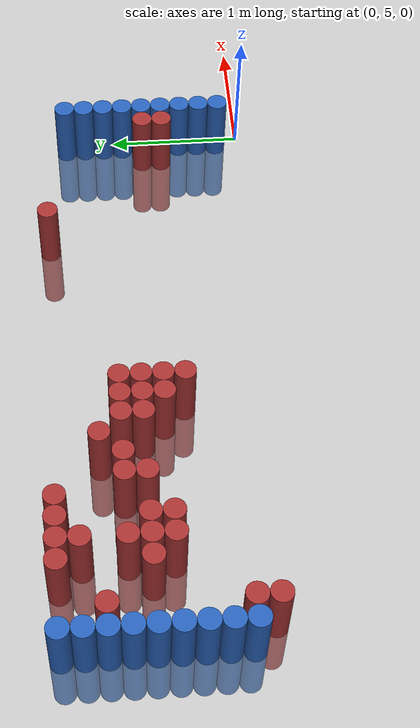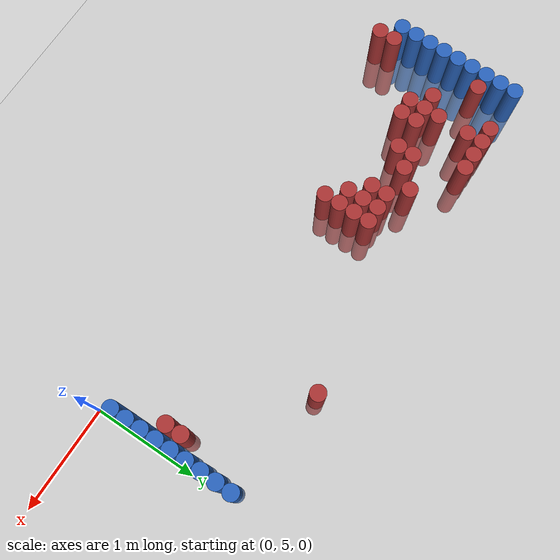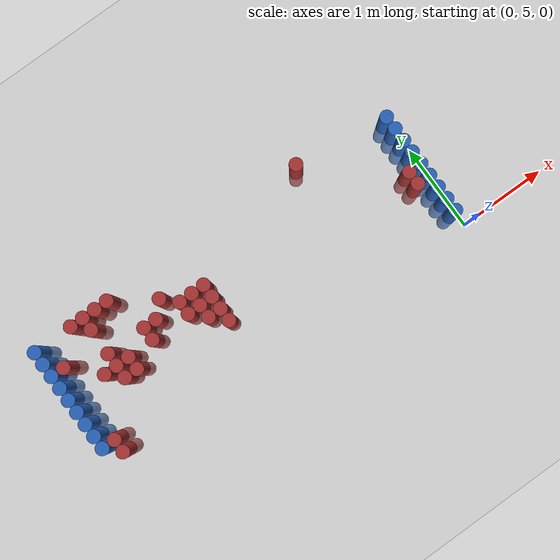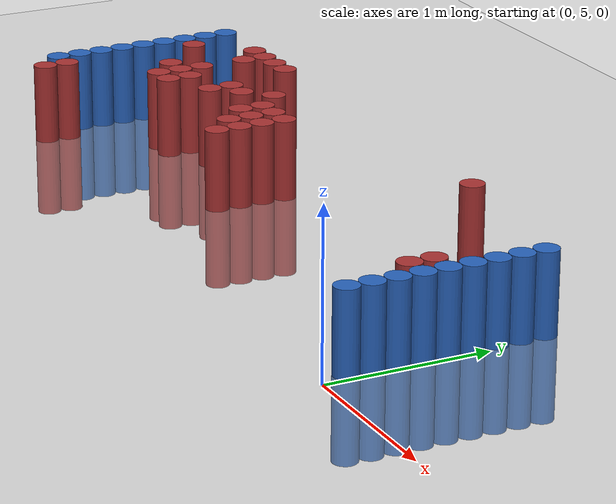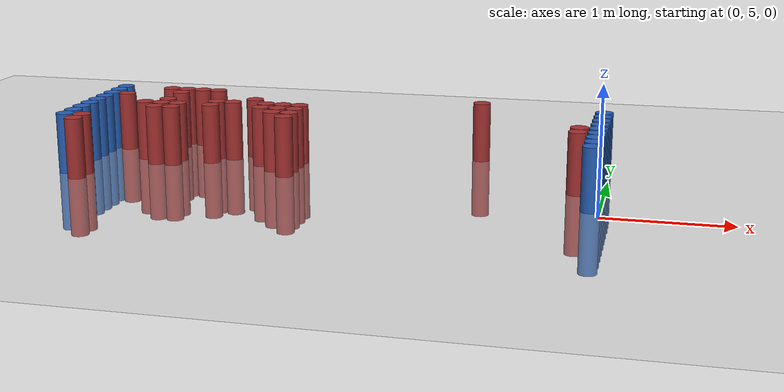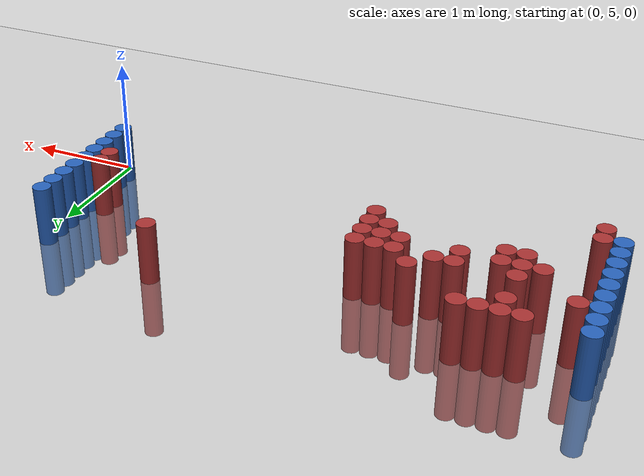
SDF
<sdf version="1.6">
 <world name="default">
  <model name="ground_plane">
   <static>1</static>
   <link name="link">
    <collision name="collision">
     <geometry><plane><normal>0 0 1</normal><size>100 100</size></plane></geometry>
     <surface><friction><ode><mu>100</mu><mu2>50</mu2></ode></friction></surface>
    </collision>
    <visual name="visual">
     <cast_shadows>0</cast_shadows>
     <geometry><plane><normal>0 0 1</normal><size>100 100</size></plane></geometry>
     <material>
      <script><uri>file://media/materials/scripts/gazebo.material</uri><name>Gazebo/Grey</name></script>
     </material>
    </visual>
   </link>
  </model>
  <model name="unit_cylinder_97">
   <static>1</static>
   <pose>-4.425000 5.325000 0.000000 0.000000 0.000000 0.000000</pose>
   <link name="link">
    <inertial>
     <mass>1</mass>
     <inertia><ixx>0.145833</ixx><ixy>0</ixy><ixz>0</ixz><iyy>0.145833</iyy><iyz>0</iyz><izz>0.125</izz></inertia>
    </inertial>
    <collision name="collision">
     <geometry><cylinder><radius>0.075000</radius><length>1</length></cylinder></geometry>
    </collision>
    <visual name="visual">
     <geometry><cylinder><radius>0.075000</radius><length>1</length></cylinder></geometry>
     <material>
      <ambient>0.152000 0.379000 0.720000 1</ambient>
      <diffuse>0.152000 0.379000 0.720000 1</diffuse>
     </material>
     <material>
      <script><name>Gazebo/Grey</name><uri>file://media/materials/scripts/gazebo.material</uri></script>
     </material>
    </visual>
   </link>
  </model>
  <model name="unit_cylinder_98">
   <static>1</static>
   <pose>-4.425000 5.475000 0.000000 0.000000 0.000000 0.000000</pose>
   <link name="link">
    <inertial>
     <mass>1</mass>
     <inertia><ixx>0.145833</ixx><ixy>0</ixy><ixz>0</ixz><iyy>0.145833</iyy><iyz>0</iyz><izz>0.125</izz></inertia>
    </inertial>
    <collision name="collision">
     <geometry><cylinder><radius>0.075000</radius><length>1</length></cylinder></geometry>
    </collision>
    <visual name="visual">
     <geometry><cylinder><radius>0.075000</radius><length>1</length></cylinder></geometry>
     <material>
      <ambient>0.152000 0.379000 0.720000 1</ambient>
      <diffuse>0.152000 0.379000 0.720000 1</diffuse>
     </material>
     <material>
      <script><name>Gazebo/Grey</name><uri>file://media/materials/scripts/gazebo.material</uri></script>
     </material>
    </visual>
   </link>
  </model>
  <model name="unit_cylinder_99">
   <static>1</static>
   <pose>-4.425000 5.625000 0.000000 0.000000 0.000000 0.000000</pose>
   <link name="link">
    <inertial>
     <mass>1</mass>
     <inertia><ixx>0.145833</ixx><ixy>0</ixy><ixz>0</ixz><iyy>0.145833</iyy><iyz>0</iyz><izz>0.125</izz></inertia>
    </inertial>
    <collision name="collision">
     <geometry><cylinder><radius>0.075000</radius><length>1</length></cylinder></geometry>
    </collision>
    <visual name="visual">
     <geometry><cylinder><radius>0.075000</radius><length>1</length></cylinder></geometry>
     <material>
      <ambient>0.152000 0.379000 0.720000 1</ambient>
      <diffuse>0.152000 0.379000 0.720000 1</diffuse>
     </material>
     <material>
      <script><name>Gazebo/Grey</name><uri>file://media/materials/scripts/gazebo.material</uri></script>
     </material>
    </visual>
   </link>
  </model>
  <model name="unit_cylinder_100">
   <static>1</static>
   <pose>-4.425000 5.775000 0.000000 0.000000 0.000000 0.000000</pose>
   <link name="link">
    <inertial>
     <mass>1</mass>
     <inertia><ixx>0.145833</ixx><ixy>0</ixy><ixz>0</ixz><iyy>0.145833</iyy><iyz>0</iyz><izz>0.125</izz></inertia>
    </inertial>
    <collision name="collision">
     <geometry><cylinder><radius>0.075000</radius><length>1</length></cylinder></geometry>
    </collision>
    <visual name="visual">
     <geometry><cylinder><radius>0.075000</radius><length>1</length></cylinder></geometry>
     <material>
      <ambient>0.152000 0.379000 0.720000 1</ambient>
      <diffuse>0.152000 0.379000 0.720000 1</diffuse>
     </material>
     <material>
      <script><name>Gazebo/Grey</name><uri>file://media/materials/scripts/gazebo.material</uri></script>
     </material>
    </visual>
   </link>
  </model>
  <model name="unit_cylinder_101">
   <static>1</static>
   <pose>-4.425000 5.925000 0.000000 0.000000 0.000000 0.000000</pose>
   <link name="link">
    <inertial>
     <mass>1</mass>
     <inertia><ixx>0.145833</ixx><ixy>0</ixy><ixz>0</ixz><iyy>0.145833</iyy><iyz>0</iyz><izz>0.125</izz></inertia>
    </inertial>
    <collision name="collision">
     <geometry><cylinder><radius>0.075000</radius><length>1</length></cylinder></geometry>
    </collision>
    <visual name="visual">
     <geometry><cylinder><radius>0.075000</radius><length>1</length></cylinder></geometry>
     <material>
      <ambient>0.152000 0.379000 0.720000 1</ambient>
      <diffuse>0.152000 0.379000 0.720000 1</diffuse>
     </material>
     <material>
      <script><name>Gazebo/Grey</name><uri>file://media/materials/scripts/gazebo.material</uri></script>
     </material>
    </visual>
   </link>
  </model>
  <model name="unit_cylinder_102">
   <static>1</static>
   <pose>-4.425000 6.075000 0.000000 0.000000 0.000000 0.000000</pose>
   <link name="link">
    <inertial>
     <mass>1</mass>
     <inertia><ixx>0.145833</ixx><ixy>0</ixy><ixz>0</ixz><iyy>0.145833</iyy><iyz>0</iyz><izz>0.125</izz></inertia>
    </inertial>
    <collision name="collision">
     <geometry><cylinder><radius>0.075000</radius><length>1</length></cylinder></geometry>
    </collision>
    <visual name="visual">
     <geometry><cylinder><radius>0.075000</radius><length>1</length></cylinder></geometry>
     <material>
      <ambient>0.152000 0.379000 0.720000 1</ambient>
      <diffuse>0.152000 0.379000 0.720000 1</diffuse>
     </material>
     <material>
      <script><name>Gazebo/Grey</name><uri>file://media/materials/scripts/gazebo.material</uri></script>
     </material>
    </visual>
   </link>
  </model>
  <model name="unit_cylinder_103">
   <static>1</static>
   <pose>-4.425000 6.225000 0.000000 0.000000 0.000000 0.000000</pose>
   <link name="link">
    <inertial>
     <mass>1</mass>
     <inertia><ixx>0.145833</ixx><ixy>0</ixy><ixz>0</ixz><iyy>0.145833</iyy><iyz>0</iyz><izz>0.125</izz></inertia>
    </inertial>
    <collision name="collision">
     <geometry><cylinder><radius>0.075000</radius><length>1</length></cylinder></geometry>
    </collision>
    <visual name="visual">
     <geometry><cylinder><radius>0.075000</radius><length>1</length></cylinder></geometry>
     <material>
      <ambient>0.152000 0.379000 0.720000 1</ambient>
      <diffuse>0.152000 0.379000 0.720000 1</diffuse>
     </material>
     <material>
      <script><name>Gazebo/Grey</name><uri>file://media/materials/scripts/gazebo.material</uri></script>
     </material>
    </visual>
   </link>
  </model>
  <model name="unit_cylinder_104">
   <static>1</static>
   <pose>-4.425000 6.375000 0.000000 0.000000 0.000000 0.000000</pose>
   <link name="link">
    <inertial>
     <mass>1</mass>
     <inertia><ixx>0.145833</ixx><ixy>0</ixy><ixz>0</ixz><iyy>0.145833</iyy><iyz>0</iyz><izz>0.125</izz></inertia>
    </inertial>
    <collision name="collision">
     <geometry><cylinder><radius>0.075000</radius><length>1</length></cylinder></geometry>
    </collision>
    <visual name="visual">
     <geometry><cylinder><radius>0.075000</radius><length>1</length></cylinder></geometry>
     <material>
      <ambient>0.152000 0.379000 0.720000 1</ambient>
      <diffuse>0.152000 0.379000 0.720000 1</diffuse>
     </material>
     <material>
      <script><name>Gazebo/Grey</name><uri>file://media/materials/scripts/gazebo.material</uri></script>
     </material>
    </visual>
   </link>
  </model>
  <model name="unit_cylinder_105">
   <static>1</static>
   <pose>-4.425000 6.525000 0.000000 0.000000 0.000000 0.000000</pose>
   <link name="link">
    <inertial>
     <mass>1</mass>
     <inertia><ixx>0.145833</ixx><ixy>0</ixy><ixz>0</ixz><iyy>0.145833</iyy><iyz>0</iyz><izz>0.125</izz></inertia>
    </inertial>
    <collision name="collision">
     <geometry><cylinder><radius>0.075000</radius><length>1</length></cylinder></geometry>
    </collision>
    <visual name="visual">
     <geometry><cylinder><radius>0.075000</radius><length>1</length></cylinder></geometry>
     <material>
      <ambient>0.152000 0.379000 0.720000 1</ambient>
      <diffuse>0.152000 0.379000 0.720000 1</diffuse>
     </material>
     <material>
      <script><name>Gazebo/Grey</name><uri>file://media/materials/scripts/gazebo.material</uri></script>
     </material>
    </visual>
   </link>
  </model>
  <model name="unit_cylinder_126">
   <static>1</static>
   <pose>-4.275000 5.175000 0.000000 0.000000 0.000000 0.000000</pose>
   <link name="link">
    <inertial>
     <mass>1</mass>
     <inertia><ixx>0.145833</ixx><ixy>0</ixy><ixz>0</ixz><iyy>0.145833</iyy><iyz>0</iyz><izz>0.125</izz></inertia>
    </inertial>
    <collision name="collision">
     <geometry><cylinder><radius>0.075000</radius><length>1</length></cylinder></geometry>
    </collision>
    <visual name="visual">
     <geometry><cylinder><radius>0.075000</radius><length>1</length></cylinder></geometry>
     <material>
      <ambient>0.648000 0.192000 0.192000 1</ambient>
      <diffuse>0.648000 0.192000 0.192000 1</diffuse>
     </material>
     <material>
      <script><name>Gazebo/Grey</name><uri>file://media/materials/scripts/gazebo.material</uri></script>
     </material>
    </visual>
   </link>
  </model>
  <model name="unit_cylinder_127">
   <static>1</static>
   <pose>-4.275000 5.325000 0.000000 0.000000 0.000000 0.000000</pose>
   <link name="link">
    <inertial>
     <mass>1</mass>
     <inertia><ixx>0.145833</ixx><ixy>0</ixy><ixz>0</ixz><iyy>0.145833</iyy><iyz>0</iyz><izz>0.125</izz></inertia>
    </inertial>
    <collision name="collision">
     <geometry><cylinder><radius>0.075000</radius><length>1</length></cylinder></geometry>
    </collision>
    <visual name="visual">
     <geometry><cylinder><radius>0.075000</radius><length>1</length></cylinder></geometry>
     <material>
      <ambient>0.648000 0.192000 0.192000 1</ambient>
      <diffuse>0.648000 0.192000 0.192000 1</diffuse>
     </material>
     <material>
      <script><name>Gazebo/Grey</name><uri>file://media/materials/scripts/gazebo.material</uri></script>
     </material>
    </visual>
   </link>
  </model>
  <model name="unit_cylinder_128">
   <static>1</static>
   <pose>-4.275000 6.225000 0.000000 0.000000 0.000000 0.000000</pose>
   <link name="link">
    <inertial>
     <mass>1</mass>
     <inertia><ixx>0.145833</ixx><ixy>0</ixy><ixz>0</ixz><iyy>0.145833</iyy><iyz>0</iyz><izz>0.125</izz></inertia>
    </inertial>
    <collision name="collision">
     <geometry><cylinder><radius>0.075000</radius><length>1</length></cylinder></geometry>
    </collision>
    <visual name="visual">
     <geometry><cylinder><radius>0.075000</radius><length>1</length></cylinder></geometry>
     <material>
      <ambient>0.648000 0.192000 0.192000 1</ambient>
      <diffuse>0.648000 0.192000 0.192000 1</diffuse>
     </material>
     <material>
      <script><name>Gazebo/Grey</name><uri>file://media/materials/scripts/gazebo.material</uri></script>
     </material>
    </visual>
   </link>
  </model>
  <model name="unit_cylinder_134">
   <static>1</static>
   <pose>-3.975000 5.925000 0.000000 0.000000 0.000000 0.000000</pose>
   <link name="link">
    <inertial>
     <mass>1</mass>
     <inertia><ixx>0.145833</ixx><ixy>0</ixy><ixz>0</ixz><iyy>0.145833</iyy><iyz>0</iyz><izz>0.125</izz></inertia>
    </inertial>
    <collision name="collision">
     <geometry><cylinder><radius>0.075000</radius><length>1</length></cylinder></geometry>
    </collision>
    <visual name="visual">
     <geometry><cylinder><radius>0.075000</radius><length>1</length></cylinder></geometry>
     <material>
      <ambient>0.648000 0.192000 0.192000 1</ambient>
      <diffuse>0.648000 0.192000 0.192000 1</diffuse>
     </material>
     <material>
      <script><name>Gazebo/Grey</name><uri>file://media/materials/scripts/gazebo.material</uri></script>
     </material>
    </visual>
   </link>
  </model>
  <model name="unit_cylinder_135">
   <static>1</static>
   <pose>-3.975000 6.525000 0.000000 0.000000 0.000000 0.000000</pose>
   <link name="link">
    <inertial>
     <mass>1</mass>
     <inertia><ixx>0.145833</ixx><ixy>0</ixy><ixz>0</ixz><iyy>0.145833</iyy><iyz>0</iyz><izz>0.125</izz></inertia>
    </inertial>
    <collision name="collision">
     <geometry><cylinder><radius>0.075000</radius><length>1</length></cylinder></geometry>
    </collision>
    <visual name="visual">
     <geometry><cylinder><radius>0.075000</radius><length>1</length></cylinder></geometry>
     <material>
      <ambient>0.648000 0.192000 0.192000 1</ambient>
      <diffuse>0.648000 0.192000 0.192000 1</diffuse>
     </material>
     <material>
      <script><name>Gazebo/Grey</name><uri>file://media/materials/scripts/gazebo.material</uri></script>
     </material>
    </visual>
   </link>
  </model>
  <model name="unit_cylinder_136">
   <static>1</static>
   <pose>-3.825000 5.775000 0.000000 0.000000 0.000000 0.000000</pose>
   <link name="link">
    <inertial>
     <mass>1</mass>
     <inertia><ixx>0.145833</ixx><ixy>0</ixy><ixz>0</ixz><iyy>0.145833</iyy><iyz>0</iyz><izz>0.125</izz></inertia>
    </inertial>
    <collision name="collision">
     <geometry><cylinder><radius>0.075000</radius><length>1</length></cylinder></geometry>
    </collision>
    <visual name="visual">
     <geometry><cylinder><radius>0.075000</radius><length>1</length></cylinder></geometry>
     <material>
      <ambient>0.648000 0.192000 0.192000 1</ambient>
      <diffuse>0.648000 0.192000 0.192000 1</diffuse>
     </material>
     <material>
      <script><name>Gazebo/Grey</name><uri>file://media/materials/scripts/gazebo.material</uri></script>
     </material>
    </visual>
   </link>
  </model>
  <model name="unit_cylinder_137">
   <static>1</static>
   <pose>-3.825000 5.925000 0.000000 0.000000 0.000000 0.000000</pose>
   <link name="link">
    <inertial>
     <mass>1</mass>
     <inertia><ixx>0.145833</ixx><ixy>0</ixy><ixz>0</ixz><iyy>0.145833</iyy><iyz>0</iyz><izz>0.125</izz></inertia>
    </inertial>
    <collision name="collision">
     <geometry><cylinder><radius>0.075000</radius><length>1</length></cylinder></geometry>
    </collision>
    <visual name="visual">
     <geometry><cylinder><radius>0.075000</radius><length>1</length></cylinder></geometry>
     <material>
      <ambient>0.648000 0.192000 0.192000 1</ambient>
      <diffuse>0.648000 0.192000 0.192000 1</diffuse>
     </material>
     <material>
      <script><name>Gazebo/Grey</name><uri>file://media/materials/scripts/gazebo.material</uri></script>
     </material>
    </visual>
   </link>
  </model>
  <model name="unit_cylinder_138">
   <static>1</static>
   <pose>-3.825000 6.075000 0.000000 0.000000 0.000000 0.000000</pose>
   <link name="link">
    <inertial>
     <mass>1</mass>
     <inertia><ixx>0.145833</ixx><ixy>0</ixy><ixz>0</ixz><iyy>0.145833</iyy><iyz>0</iyz><izz>0.125</izz></inertia>
    </inertial>
    <collision name="collision">
     <geometry><cylinder><radius>0.075000</radius><length>1</length></cylinder></geometry>
    </collision>
    <visual name="visual">
     <geometry><cylinder><radius>0.075000</radius><length>1</length></cylinder></geometry>
     <material>
      <ambient>0.648000 0.192000 0.192000 1</ambient>
      <diffuse>0.648000 0.192000 0.192000 1</diffuse>
     </material>
     <material>
      <script><name>Gazebo/Grey</name><uri>file://media/materials/scripts/gazebo.material</uri></script>
     </material>
    </visual>
   </link>
  </model>
  <model name="unit_cylinder_139">
   <static>1</static>
   <pose>-3.825000 6.375000 0.000000 0.000000 0.000000 0.000000</pose>
   <link name="link">
    <inertial>
     <mass>1</mass>
     <inertia><ixx>0.145833</ixx><ixy>0</ixy><ixz>0</ixz><iyy>0.145833</iyy><iyz>0</iyz><izz>0.125</izz></inertia>
    </inertial>
    <collision name="collision">
     <geometry><cylinder><radius>0.075000</radius><length>1</length></cylinder></geometry>
    </collision>
    <visual name="visual">
     <geometry><cylinder><radius>0.075000</radius><length>1</length></cylinder></geometry>
     <material>
      <ambient>0.648000 0.192000 0.192000 1</ambient>
      <diffuse>0.648000 0.192000 0.192000 1</diffuse>
     </material>
     <material>
      <script><name>Gazebo/Grey</name><uri>file://media/materials/scripts/gazebo.material</uri></script>
     </material>
    </visual>
   </link>
  </model>
  <model name="unit_cylinder_140">
   <static>1</static>
   <pose>-3.825000 6.525000 0.000000 0.000000 0.000000 0.000000</pose>
   <link name="link">
    <inertial>
     <mass>1</mass>
     <inertia><ixx>0.145833</ixx><ixy>0</ixy><ixz>0</ixz><iyy>0.145833</iyy><iyz>0</iyz><izz>0.125</izz></inertia>
    </inertial>
    <collision name="collision">
     <geometry><cylinder><radius>0.075000</radius><length>1</length></cylinder></geometry>
    </collision>
    <visual name="visual">
     <geometry><cylinder><radius>0.075000</radius><length>1</length></cylinder></geometry>
     <material>
      <ambient>0.648000 0.192000 0.192000 1</ambient>
      <diffuse>0.648000 0.192000 0.192000 1</diffuse>
     </material>
     <material>
      <script><name>Gazebo/Grey</name><uri>file://media/materials/scripts/gazebo.material</uri></script>
     </material>
    </visual>
   </link>
  </model>
  <model name="unit_cylinder_141">
   <static>1</static>
   <pose>-3.675000 5.775000 0.000000 0.000000 0.000000 0.000000</pose>
   <link name="link">
    <inertial>
     <mass>1</mass>
     <inertia><ixx>0.145833</ixx><ixy>0</ixy><ixz>0</ixz><iyy>0.145833</iyy><iyz>0</iyz><izz>0.125</izz></inertia>
    </inertial>
    <collision name="collision">
     <geometry><cylinder><radius>0.075000</radius><length>1</length></cylinder></geometry>
    </collision>
    <visual name="visual">
     <geometry><cylinder><radius>0.075000</radius><length>1</length></cylinder></geometry>
     <material>
      <ambient>0.648000 0.192000 0.192000 1</ambient>
      <diffuse>0.648000 0.192000 0.192000 1</diffuse>
     </material>
     <material>
      <script><name>Gazebo/Grey</name><uri>file://media/materials/scripts/gazebo.material</uri></script>
     </material>
    </visual>
   </link>
  </model>
  <model name="unit_cylinder_142">
   <static>1</static>
   <pose>-3.675000 5.925000 0.000000 0.000000 0.000000 0.000000</pose>
   <link name="link">
    <inertial>
     <mass>1</mass>
     <inertia><ixx>0.145833</ixx><ixy>0</ixy><ixz>0</ixz><iyy>0.145833</iyy><iyz>0</iyz><izz>0.125</izz></inertia>
    </inertial>
    <collision name="collision">
     <geometry><cylinder><radius>0.075000</radius><length>1</length></cylinder></geometry>
    </collision>
    <visual name="visual">
     <geometry><cylinder><radius>0.075000</radius><length>1</length></cylinder></geometry>
     <material>
      <ambient>0.648000 0.192000 0.192000 1</ambient>
      <diffuse>0.648000 0.192000 0.192000 1</diffuse>
     </material>
     <material>
      <script><name>Gazebo/Grey</name><uri>file://media/materials/scripts/gazebo.material</uri></script>
     </material>
    </visual>
   </link>
  </model>
  <model name="unit_cylinder_143">
   <static>1</static>
   <pose>-3.675000 6.525000 0.000000 0.000000 0.000000 0.000000</pose>
   <link name="link">
    <inertial>
     <mass>1</mass>
     <inertia><ixx>0.145833</ixx><ixy>0</ixy><ixz>0</ixz><iyy>0.145833</iyy><iyz>0</iyz><izz>0.125</izz></inertia>
    </inertial>
    <collision name="collision">
     <geometry><cylinder><radius>0.075000</radius><length>1</length></cylinder></geometry>
    </collision>
    <visual name="visual">
     <geometry><cylinder><radius>0.075000</radius><length>1</length></cylinder></geometry>
     <material>
      <ambient>0.648000 0.192000 0.192000 1</ambient>
      <diffuse>0.648000 0.192000 0.192000 1</diffuse>
     </material>
     <material>
      <script><name>Gazebo/Grey</name><uri>file://media/materials/scripts/gazebo.material</uri></script>
     </material>
    </visual>
   </link>
  </model>
  <model name="unit_cylinder_145">
   <static>1</static>
   <pose>-3.525000 6.525000 0.000000 0.000000 0.000000 0.000000</pose>
   <link name="link">
    <inertial>
     <mass>1</mass>
     <inertia><ixx>0.145833</ixx><ixy>0</ixy><ixz>0</ixz><iyy>0.145833</iyy><iyz>0</iyz><izz>0.125</izz></inertia>
    </inertial>
    <collision name="collision">
     <geometry><cylinder><radius>0.075000</radius><length>1</length></cylinder></geometry>
    </collision>
    <visual name="visual">
     <geometry><cylinder><radius>0.075000</radius><length>1</length></cylinder></geometry>
     <material>
      <ambient>0.648000 0.192000 0.192000 1</ambient>
      <diffuse>0.648000 0.192000 0.192000 1</diffuse>
     </material>
     <material>
      <script><name>Gazebo/Grey</name><uri>file://media/materials/scripts/gazebo.material</uri></script>
     </material>
    </visual>
   </link>
  </model>
  <model name="unit_cylinder_146">
   <static>1</static>
   <pose>-3.375000 5.925000 0.000000 0.000000 0.000000 0.000000</pose>
   <link name="link">
    <inertial>
     <mass>1</mass>
     <inertia><ixx>0.145833</ixx><ixy>0</ixy><ixz>0</ixz><iyy>0.145833</iyy><iyz>0</iyz><izz>0.125</izz></inertia>
    </inertial>
    <collision name="collision">
     <geometry><cylinder><radius>0.075000</radius><length>1</length></cylinder></geometry>
    </collision>
    <visual name="visual">
     <geometry><cylinder><radius>0.075000</radius><length>1</length></cylinder></geometry>
     <material>
      <ambient>0.648000 0.192000 0.192000 1</ambient>
      <diffuse>0.648000 0.192000 0.192000 1</diffuse>
     </material>
     <material>
      <script><name>Gazebo/Grey</name><uri>file://media/materials/scripts/gazebo.material</uri></script>
     </material>
    </visual>
   </link>
  </model>
  <model name="unit_cylinder_147">
   <static>1</static>
   <pose>-3.375000 6.075000 0.000000 0.000000 0.000000 0.000000</pose>
   <link name="link">
    <inertial>
     <mass>1</mass>
     <inertia><ixx>0.145833</ixx><ixy>0</ixy><ixz>0</ixz><iyy>0.145833</iyy><iyz>0</iyz><izz>0.125</izz></inertia>
    </inertial>
    <collision name="collision">
     <geometry><cylinder><radius>0.075000</radius><length>1</length></cylinder></geometry>
    </collision>
    <visual name="visual">
     <geometry><cylinder><radius>0.075000</radius><length>1</length></cylinder></geometry>
     <material>
      <ambient>0.648000 0.192000 0.192000 1</ambient>
      <diffuse>0.648000 0.192000 0.192000 1</diffuse>
     </material>
     <material>
      <script><name>Gazebo/Grey</name><uri>file://media/materials/scripts/gazebo.material</uri></script>
     </material>
    </visual>
   </link>
  </model>
  <model name="unit_cylinder_148">
   <static>1</static>
   <pose>-3.225000 6.075000 0.000000 0.000000 0.000000 0.000000</pose>
   <link name="link">
    <inertial>
     <mass>1</mass>
     <inertia><ixx>0.145833</ixx><ixy>0</ixy><ixz>0</ixz><iyy>0.145833</iyy><iyz>0</iyz><izz>0.125</izz></inertia>
    </inertial>
    <collision name="collision">
     <geometry><cylinder><radius>0.075000</radius><length>1</length></cylinder></geometry>
    </collision>
    <visual name="visual">
     <geometry><cylinder><radius>0.075000</radius><length>1</length></cylinder></geometry>
     <material>
      <ambient>0.648000 0.192000 0.192000 1</ambient>
      <diffuse>0.648000 0.192000 0.192000 1</diffuse>
     </material>
     <material>
      <script><name>Gazebo/Grey</name><uri>file://media/materials/scripts/gazebo.material</uri></script>
     </material>
    </visual>
   </link>
  </model>
  <model name="unit_cylinder_153">
   <static>1</static>
   <pose>-3.075000 6.225000 0.000000 0.000000 0.000000 0.000000</pose>
   <link name="link">
    <inertial>
     <mass>1</mass>
     <inertia><ixx>0.145833</ixx><ixy>0</ixy><ixz>0</ixz><iyy>0.145833</iyy><iyz>0</iyz><izz>0.125</izz></inertia>
    </inertial>
    <collision name="collision">
     <geometry><cylinder><radius>0.075000</radius><length>1</length></cylinder></geometry>
    </collision>
    <visual name="visual">
     <geometry><cylinder><radius>0.075000</radius><length>1</length></cylinder></geometry>
     <material>
      <ambient>0.648000 0.192000 0.192000 1</ambient>
      <diffuse>0.648000 0.192000 0.192000 1</diffuse>
     </material>
     <material>
      <script><name>Gazebo/Grey</name><uri>file://media/materials/scripts/gazebo.material</uri></script>
     </material>
    </visual>
   </link>
  </model>
  <model name="unit_cylinder_160">
   <static>1</static>
   <pose>-2.925000 5.925000 0.000000 0.000000 0.000000 0.000000</pose>
   <link name="link">
    <inertial>
     <mass>1</mass>
     <inertia><ixx>0.145833</ixx><ixy>0</ixy><ixz>0</ixz><iyy>0.145833</iyy><iyz>0</iyz><izz>0.125</izz></inertia>
    </inertial>
    <collision name="collision">
     <geometry><cylinder><radius>0.075000</radius><length>1</length></cylinder></geometry>
    </collision>
    <visual name="visual">
     <geometry><cylinder><radius>0.075000</radius><length>1</length></cylinder></geometry>
     <material>
      <ambient>0.648000 0.192000 0.192000 1</ambient>
      <diffuse>0.648000 0.192000 0.192000 1</diffuse>
     </material>
     <material>
      <script><name>Gazebo/Grey</name><uri>file://media/materials/scripts/gazebo.material</uri></script>
     </material>
    </visual>
   </link>
  </model>
  <model name="unit_cylinder_161">
   <static>1</static>
   <pose>-2.925000 6.075000 0.000000 0.000000 0.000000 0.000000</pose>
   <link name="link">
    <inertial>
     <mass>1</mass>
     <inertia><ixx>0.145833</ixx><ixy>0</ixy><ixz>0</ixz><iyy>0.145833</iyy><iyz>0</iyz><izz>0.125</izz></inertia>
    </inertial>
    <collision name="collision">
     <geometry><cylinder><radius>0.075000</radius><length>1</length></cylinder></geometry>
    </collision>
    <visual name="visual">
     <geometry><cylinder><radius>0.075000</radius><length>1</length></cylinder></geometry>
     <material>
      <ambient>0.648000 0.192000 0.192000 1</ambient>
      <diffuse>0.648000 0.192000 0.192000 1</diffuse>
     </material>
     <material>
      <script><name>Gazebo/Grey</name><uri>file://media/materials/scripts/gazebo.material</uri></script>
     </material>
    </visual>
   </link>
  </model>
  <model name="unit_cylinder_168">
   <static>1</static>
   <pose>-2.775000 5.775000 0.000000 0.000000 0.000000 0.000000</pose>
   <link name="link">
    <inertial>
     <mass>1</mass>
     <inertia><ixx>0.145833</ixx><ixy>0</ixy><ixz>0</ixz><iyy>0.145833</iyy><iyz>0</iyz><izz>0.125</izz></inertia>
    </inertial>
    <collision name="collision">
     <geometry><cylinder><radius>0.075000</radius><length>1</length></cylinder></geometry>
    </collision>
    <visual name="visual">
     <geometry><cylinder><radius>0.075000</radius><length>1</length></cylinder></geometry>
     <material>
      <ambient>0.648000 0.192000 0.192000 1</ambient>
      <diffuse>0.648000 0.192000 0.192000 1</diffuse>
     </material>
     <material>
      <script><name>Gazebo/Grey</name><uri>file://media/materials/scripts/gazebo.material</uri></script>
     </material>
    </visual>
   </link>
  </model>
  <model name="unit_cylinder_169">
   <static>1</static>
   <pose>-2.775000 5.925000 0.000000 0.000000 0.000000 0.000000</pose>
   <link name="link">
    <inertial>
     <mass>1</mass>
     <inertia><ixx>0.145833</ixx><ixy>0</ixy><ixz>0</ixz><iyy>0.145833</iyy><iyz>0</iyz><izz>0.125</izz></inertia>
    </inertial>
    <collision name="collision">
     <geometry><cylinder><radius>0.075000</radius><length>1</length></cylinder></geometry>
    </collision>
    <visual name="visual">
     <geometry><cylinder><radius>0.075000</radius><length>1</length></cylinder></geometry>
     <material>
      <ambient>0.648000 0.192000 0.192000 1</ambient>
      <diffuse>0.648000 0.192000 0.192000 1</diffuse>
     </material>
     <material>
      <script><name>Gazebo/Grey</name><uri>file://media/materials/scripts/gazebo.material</uri></script>
     </material>
    </visual>
   </link>
  </model>
  <model name="unit_cylinder_170">
   <static>1</static>
   <pose>-2.775000 6.075000 0.000000 0.000000 0.000000 0.000000</pose>
   <link name="link">
    <inertial>
     <mass>1</mass>
     <inertia><ixx>0.145833</ixx><ixy>0</ixy><ixz>0</ixz><iyy>0.145833</iyy><iyz>0</iyz><izz>0.125</izz></inertia>
    </inertial>
    <collision name="collision">
     <geometry><cylinder><radius>0.075000</radius><length>1</length></cylinder></geometry>
    </collision>
    <visual name="visual">
     <geometry><cylinder><radius>0.075000</radius><length>1</length></cylinder></geometry>
     <material>
      <ambient>0.648000 0.192000 0.192000 1</ambient>
      <diffuse>0.648000 0.192000 0.192000 1</diffuse>
     </material>
     <material>
      <script><name>Gazebo/Grey</name><uri>file://media/materials/scripts/gazebo.material</uri></script>
     </material>
    </visual>
   </link>
  </model>
  <model name="unit_cylinder_174">
   <static>1</static>
   <pose>-2.625000 5.625000 0.000000 0.000000 0.000000 0.000000</pose>
   <link name="link">
    <inertial>
     <mass>1</mass>
     <inertia><ixx>0.145833</ixx><ixy>0</ixy><ixz>0</ixz><iyy>0.145833</iyy><iyz>0</iyz><izz>0.125</izz></inertia>
    </inertial>
    <collision name="collision">
     <geometry><cylinder><radius>0.075000</radius><length>1</length></cylinder></geometry>
    </collision>
    <visual name="visual">
     <geometry><cylinder><radius>0.075000</radius><length>1</length></cylinder></geometry>
     <material>
      <ambient>0.648000 0.192000 0.192000 1</ambient>
      <diffuse>0.648000 0.192000 0.192000 1</diffuse>
     </material>
     <material>
      <script><name>Gazebo/Grey</name><uri>file://media/materials/scripts/gazebo.material</uri></script>
     </material>
    </visual>
   </link>
  </model>
  <model name="unit_cylinder_175">
   <static>1</static>
   <pose>-2.625000 5.775000 0.000000 0.000000 0.000000 0.000000</pose>
   <link name="link">
    <inertial>
     <mass>1</mass>
     <inertia><ixx>0.145833</ixx><ixy>0</ixy><ixz>0</ixz><iyy>0.145833</iyy><iyz>0</iyz><izz>0.125</izz></inertia>
    </inertial>
    <collision name="collision">
     <geometry><cylinder><radius>0.075000</radius><length>1</length></cylinder></geometry>
    </collision>
    <visual name="visual">
     <geometry><cylinder><radius>0.075000</radius><length>1</length></cylinder></geometry>
     <material>
      <ambient>0.648000 0.192000 0.192000 1</ambient>
      <diffuse>0.648000 0.192000 0.192000 1</diffuse>
     </material>
     <material>
      <script><name>Gazebo/Grey</name><uri>file://media/materials/scripts/gazebo.material</uri></script>
     </material>
    </visual>
   </link>
  </model>
  <model name="unit_cylinder_176">
   <static>1</static>
   <pose>-2.625000 5.925000 0.000000 0.000000 0.000000 0.000000</pose>
   <link name="link">
    <inertial>
     <mass>1</mass>
     <inertia><ixx>0.145833</ixx><ixy>0</ixy><ixz>0</ixz><iyy>0.145833</iyy><iyz>0</iyz><izz>0.125</izz></inertia>
    </inertial>
    <collision name="collision">
     <geometry><cylinder><radius>0.075000</radius><length>1</length></cylinder></geometry>
    </collision>
    <visual name="visual">
     <geometry><cylinder><radius>0.075000</radius><length>1</length></cylinder></geometry>
     <material>
      <ambient>0.648000 0.192000 0.192000 1</ambient>
      <diffuse>0.648000 0.192000 0.192000 1</diffuse>
     </material>
     <material>
      <script><name>Gazebo/Grey</name><uri>file://media/materials/scripts/gazebo.material</uri></script>
     </material>
    </visual>
   </link>
  </model>
  <model name="unit_cylinder_177">
   <static>1</static>
   <pose>-2.625000 6.075000 0.000000 0.000000 0.000000 0.000000</pose>
   <link name="link">
    <inertial>
     <mass>1</mass>
     <inertia><ixx>0.145833</ixx><ixy>0</ixy><ixz>0</ixz><iyy>0.145833</iyy><iyz>0</iyz><izz>0.125</izz></inertia>
    </inertial>
    <collision name="collision">
     <geometry><cylinder><radius>0.075000</radius><length>1</length></cylinder></geometry>
    </collision>
    <visual name="visual">
     <geometry><cylinder><radius>0.075000</radius><length>1</length></cylinder></geometry>
     <material>
      <ambient>0.648000 0.192000 0.192000 1</ambient>
      <diffuse>0.648000 0.192000 0.192000 1</diffuse>
     </material>
     <material>
      <script><name>Gazebo/Grey</name><uri>file://media/materials/scripts/gazebo.material</uri></script>
     </material>
    </visual>
   </link>
  </model>
  <model name="unit_cylinder_187">
   <static>1</static>
   <pose>-1.125000 6.525000 0.000000 0.000000 0.000000 0.000000</pose>
   <link name="link">
    <inertial>
     <mass>1</mass>
     <inertia><ixx>0.145833</ixx><ixy>0</ixy><ixz>0</ixz><iyy>0.145833</iyy><iyz>0</iyz><izz>0.125</izz></inertia>
    </inertial>
    <collision name="collision">
     <geometry><cylinder><radius>0.075000</radius><length>1</length></cylinder></geometry>
    </collision>
    <visual name="visual">
     <geometry><cylinder><radius>0.075000</radius><length>1</length></cylinder></geometry>
     <material>
      <ambient>0.648000 0.192000 0.192000 1</ambient>
      <diffuse>0.648000 0.192000 0.192000 1</diffuse>
     </material>
     <material>
      <script><name>Gazebo/Grey</name><uri>file://media/materials/scripts/gazebo.material</uri></script>
     </material>
    </visual>
   </link>
  </model>
  <model name="unit_cylinder_202">
   <static>1</static>
   <pose>-0.225000 5.625000 0.000000 0.000000 0.000000 0.000000</pose>
   <link name="link">
    <inertial>
     <mass>1</mass>
     <inertia><ixx>0.145833</ixx><ixy>0</ixy><ixz>0</ixz><iyy>0.145833</iyy><iyz>0</iyz><izz>0.125</izz></inertia>
    </inertial>
    <collision name="collision">
     <geometry><cylinder><radius>0.075000</radius><length>1</length></cylinder></geometry>
    </collision>
    <visual name="visual">
     <geometry><cylinder><radius>0.075000</radius><length>1</length></cylinder></geometry>
     <material>
      <ambient>0.648000 0.192000 0.192000 1</ambient>
      <diffuse>0.648000 0.192000 0.192000 1</diffuse>
     </material>
     <material>
      <script><name>Gazebo/Grey</name><uri>file://media/materials/scripts/gazebo.material</uri></script>
     </material>
    </visual>
   </link>
  </model>
  <model name="unit_cylinder_203">
   <static>1</static>
   <pose>-0.225000 5.775000 0.000000 0.000000 0.000000 0.000000</pose>
   <link name="link">
    <inertial>
     <mass>1</mass>
     <inertia><ixx>0.145833</ixx><ixy>0</ixy><ixz>0</ixz><iyy>0.145833</iyy><iyz>0</iyz><izz>0.125</izz></inertia>
    </inertial>
    <collision name="collision">
     <geometry><cylinder><radius>0.075000</radius><length>1</length></cylinder></geometry>
    </collision>
    <visual name="visual">
     <geometry><cylinder><radius>0.075000</radius><length>1</length></cylinder></geometry>
     <material>
      <ambient>0.648000 0.192000 0.192000 1</ambient>
      <diffuse>0.648000 0.192000 0.192000 1</diffuse>
     </material>
     <material>
      <script><name>Gazebo/Grey</name><uri>file://media/materials/scripts/gazebo.material</uri></script>
     </material>
    </visual>
   </link>
  </model>
  <model name="unit_cylinder_211">
   <static>1</static>
   <pose>-0.075000 5.175000 0.000000 0.000000 0.000000 0.000000</pose>
   <link name="link">
    <inertial>
     <mass>1</mass>
     <inertia><ixx>0.145833</ixx><ixy>0</ixy><ixz>0</ixz><iyy>0.145833</iyy><iyz>0</iyz><izz>0.125</izz></inertia>
    </inertial>
    <collision name="collision">
     <geometry><cylinder><radius>0.075000</radius><length>1</length></cylinder></geometry>
    </collision>
    <visual name="visual">
     <geometry><cylinder><radius>0.075000</radius><length>1</length></cylinder></geometry>
     <material>
      <ambient>0.152000 0.379000 0.720000 1</ambient>
      <diffuse>0.152000 0.379000 0.720000 1</diffuse>
     </material>
     <material>
      <script><name>Gazebo/Grey</name><uri>file://media/materials/scripts/gazebo.material</uri></script>
     </material>
    </visual>
   </link>
  </model>
  <model name="unit_cylinder_212">
   <static>1</static>
   <pose>-0.075000 5.325000 0.000000 0.000000 0.000000 0.000000</pose>
   <link name="link">
    <inertial>
     <mass>1</mass>
     <inertia><ixx>0.145833</ixx><ixy>0</ixy><ixz>0</ixz><iyy>0.145833</iyy><iyz>0</iyz><izz>0.125</izz></inertia>
    </inertial>
    <collision name="collision">
     <geometry><cylinder><radius>0.075000</radius><length>1</length></cylinder></geometry>
    </collision>
    <visual name="visual">
     <geometry><cylinder><radius>0.075000</radius><length>1</length></cylinder></geometry>
     <material>
      <ambient>0.152000 0.379000 0.720000 1</ambient>
      <diffuse>0.152000 0.379000 0.720000 1</diffuse>
     </material>
     <material>
      <script><name>Gazebo/Grey</name><uri>file://media/materials/scripts/gazebo.material</uri></script>
     </material>
    </visual>
   </link>
  </model>
  <model name="unit_cylinder_213">
   <static>1</static>
   <pose>-0.075000 5.475000 0.000000 0.000000 0.000000 0.000000</pose>
   <link name="link">
    <inertial>
     <mass>1</mass>
     <inertia><ixx>0.145833</ixx><ixy>0</ixy><ixz>0</ixz><iyy>0.145833</iyy><iyz>0</iyz><izz>0.125</izz></inertia>
    </inertial>
    <collision name="collision">
     <geometry><cylinder><radius>0.075000</radius><length>1</length></cylinder></geometry>
    </collision>
    <visual name="visual">
     <geometry><cylinder><radius>0.075000</radius><length>1</length></cylinder></geometry>
     <material>
      <ambient>0.152000 0.379000 0.720000 1</ambient>
      <diffuse>0.152000 0.379000 0.720000 1</diffuse>
     </material>
     <material>
      <script><name>Gazebo/Grey</name><uri>file://media/materials/scripts/gazebo.material</uri></script>
     </material>
    </visual>
   </link>
  </model>
  <model name="unit_cylinder_214">
   <static>1</static>
   <pose>-0.075000 5.625000 0.000000 0.000000 0.000000 0.000000</pose>
   <link name="link">
    <inertial>
     <mass>1</mass>
     <inertia><ixx>0.145833</ixx><ixy>0</ixy><ixz>0</ixz><iyy>0.145833</iyy><iyz>0</iyz><izz>0.125</izz></inertia>
    </inertial>
    <collision name="collision">
     <geometry><cylinder><radius>0.075000</radius><length>1</length></cylinder></geometry>
    </collision>
    <visual name="visual">
     <geometry><cylinder><radius>0.075000</radius><length>1</length></cylinder></geometry>
     <material>
      <ambient>0.152000 0.379000 0.720000 1</ambient>
      <diffuse>0.152000 0.379000 0.720000 1</diffuse>
     </material>
     <material>
      <script><name>Gazebo/Grey</name><uri>file://media/materials/scripts/gazebo.material</uri></script>
     </material>
    </visual>
   </link>
  </model>
  <model name="unit_cylinder_215">
   <static>1</static>
   <pose>-0.075000 5.775000 0.000000 0.000000 0.000000 0.000000</pose>
   <link name="link">
    <inertial>
     <mass>1</mass>
     <inertia><ixx>0.145833</ixx><ixy>0</ixy><ixz>0</ixz><iyy>0.145833</iyy><iyz>0</iyz><izz>0.125</izz></inertia>
    </inertial>
    <collision name="collision">
     <geometry><cylinder><radius>0.075000</radius><length>1</length></cylinder></geometry>
    </collision>
    <visual name="visual">
     <geometry><cylinder><radius>0.075000</radius><length>1</length></cylinder></geometry>
     <material>
      <ambient>0.152000 0.379000 0.720000 1</ambient>
      <diffuse>0.152000 0.379000 0.720000 1</diffuse>
     </material>
     <material>
      <script><name>Gazebo/Grey</name><uri>file://media/materials/scripts/gazebo.material</uri></script>
     </material>
    </visual>
   </link>
  </model>
  <model name="unit_cylinder_216">
   <static>1</static>
   <pose>-0.075000 5.925000 0.000000 0.000000 0.000000 0.000000</pose>
   <link name="link">
    <inertial>
     <mass>1</mass>
     <inertia><ixx>0.145833</ixx><ixy>0</ixy><ixz>0</ixz><iyy>0.145833</iyy><iyz>0</iyz><izz>0.125</izz></inertia>
    </inertial>
    <collision name="collision">
     <geometry><cylinder><radius>0.075000</radius><length>1</length></cylinder></geometry>
    </collision>
    <visual name="visual">
     <geometry><cylinder><radius>0.075000</radius><length>1</length></cylinder></geometry>
     <material>
      <ambient>0.152000 0.379000 0.720000 1</ambient>
      <diffuse>0.152000 0.379000 0.720000 1</diffuse>
     </material>
     <material>
      <script><name>Gazebo/Grey</name><uri>file://media/materials/scripts/gazebo.material</uri></script>
     </material>
    </visual>
   </link>
  </model>
  <model name="unit_cylinder_217">
   <static>1</static>
   <pose>-0.075000 6.075000 0.000000 0.000000 0.000000 0.000000</pose>
   <link name="link">
    <inertial>
     <mass>1</mass>
     <inertia><ixx>0.145833</ixx><ixy>0</ixy><ixz>0</ixz><iyy>0.145833</iyy><iyz>0</iyz><izz>0.125</izz></inertia>
    </inertial>
    <collision name="collision">
     <geometry><cylinder><radius>0.075000</radius><length>1</length></cylinder></geometry>
    </collision>
    <visual name="visual">
     <geometry><cylinder><radius>0.075000</radius><length>1</length></cylinder></geometry>
     <material>
      <ambient>0.152000 0.379000 0.720000 1</ambient>
      <diffuse>0.152000 0.379000 0.720000 1</diffuse>
     </material>
     <material>
      <script><name>Gazebo/Grey</name><uri>file://media/materials/scripts/gazebo.material</uri></script>
     </material>
    </visual>
   </link>
  </model>
  <model name="unit_cylinder_218">
   <static>1</static>
   <pose>-0.075000 6.225000 0.000000 0.000000 0.000000 0.000000</pose>
   <link name="link">
    <inertial>
     <mass>1</mass>
     <inertia><ixx>0.145833</ixx><ixy>0</ixy><ixz>0</ixz><iyy>0.145833</iyy><iyz>0</iyz><izz>0.125</izz></inertia>
    </inertial>
    <collision name="collision">
     <geometry><cylinder><radius>0.075000</radius><length>1</length></cylinder></geometry>
    </collision>
    <visual name="visual">
     <geometry><cylinder><radius>0.075000</radius><length>1</length></cylinder></geometry>
     <material>
      <ambient>0.152000 0.379000 0.720000 1</ambient>
      <diffuse>0.152000 0.379000 0.720000 1</diffuse>
     </material>
     <material>
      <script><name>Gazebo/Grey</name><uri>file://media/materials/scripts/gazebo.material</uri></script>
     </material>
    </visual>
   </link>
  </model>
  <model name="unit_cylinder_219">
   <static>1</static>
   <pose>-0.075000 6.375000 0.000000 0.000000 0.000000 0.000000</pose>
   <link name="link">
    <inertial>
     <mass>1</mass>
     <inertia><ixx>0.145833</ixx><ixy>0</ixy><ixz>0</ixz><iyy>0.145833</iyy><iyz>0</iyz><izz>0.125</izz></inertia>
    </inertial>
    <collision name="collision">
     <geometry><cylinder><radius>0.075000</radius><length>1</length></cylinder></geometry>
    </collision>
    <visual name="visual">
     <geometry><cylinder><radius>0.075000</radius><length>1</length></cylinder></geometry>
     <material>
      <ambient>0.152000 0.379000 0.720000 1</ambient>
      <diffuse>0.152000 0.379000 0.720000 1</diffuse>
     </material>
     <material>
      <script><name>Gazebo/Grey</name><uri>file://media/materials/scripts/gazebo.material</uri></script>
     </material>
    </visual>
   </link>
  </model>
 </world>
</sdf>
